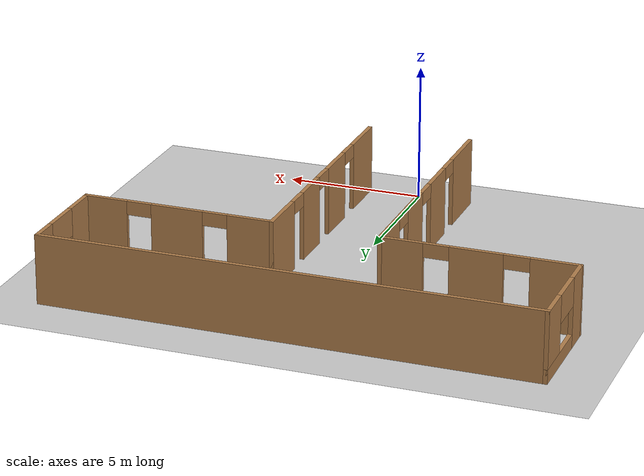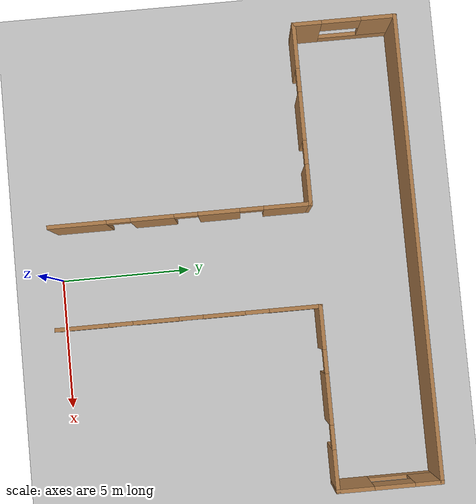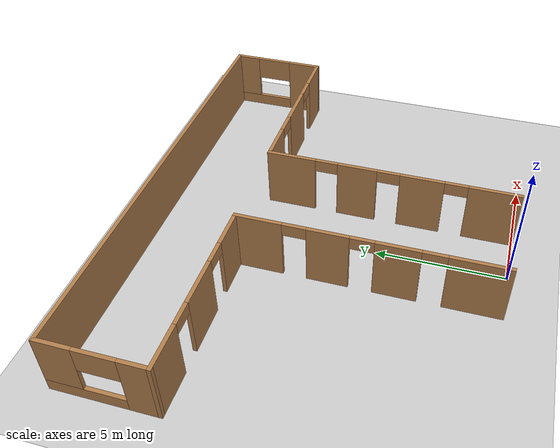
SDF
<sdf version="1.7">
 <world name="default">
  <light name="sun" type="directional">
   <pose>0 0 10 0 -0 0</pose>
   <diffuse>0.8 0.8 0.8 1</diffuse>
   <specular>0.2 0.2 0.2 1</specular>
   <attenuation>
    <range>1000</range>
    <constant>0.9</constant>
    <linear>0.01</linear>
    <quadratic>0.001</quadratic>
   </attenuation>
   <direction>-0.5 0.1 -0.9</direction>
   <spot><inner_angle>0</inner_angle><outer_angle>0</outer_angle><falloff>0</falloff></spot>
  </light>
  <model name="ground_plane">
   <static>1</static>
   <link name="link">
    <collision name="collision">
     <geometry><plane><normal>0 0 1</normal><size>100 100</size></plane></geometry>
     <surface>
      <contact><collide_bitmask>65535</collide_bitmask></contact>
      <friction><ode><mu>100</mu><mu2>50</mu2></ode></friction>
     </surface>
    </collision>
    <visual name="visual">
     <cast_shadows>0</cast_shadows>
     <geometry><plane><normal>0 0 1</normal><size>100 100</size></plane></geometry>
     <material>
      <script><uri>file://media/materials/scripts/gazebo.material</uri><name>Gazebo/Grey</name></script>
     </material>
    </visual>
   </link>
  </model>
  <gravity>0 0 -9.8</gravity>
  <magnetic_field>6e-06 2.3e-05 -4.2e-05</magnetic_field>
  <atmosphere type="adiabatic"/>
  <physics type="ode">
   <max_step_size>0.001</max_step_size>
   <real_time_factor>1</real_time_factor>
   <real_time_update_rate>1000</real_time_update_rate>
  </physics>
  <scene><ambient>0.4 0.4 0.4 1</ambient><background>0.7 0.7 0.7 1</background><shadows>1</shadows></scene>
  <spherical_coordinates>
   <surface_model>EARTH_WGS84</surface_model>
   <latitude_deg>0</latitude_deg>
   <longitude_deg>0</longitude_deg>
   <elevation>0</elevation>
   <heading_deg>0</heading_deg>
  </spherical_coordinates>
  <model name="Untitled">
   <pose>0.005 6.89 0 0 -0 0</pose>
   <link name="Wall_10">
    <pose>8.775 4.925 0 0 -0 1.5708</pose>
    <visual name="Wall_10_Visual_0">
     <pose>-1.28869 0 1.25 0 -0 0</pose>
     <geometry><box><size>1.42262 0.15 2.5</size></box></geometry>
     <material>
      <script><uri>file://media/materials/scripts/gazebo.material</uri><name>Gazebo/Wood</name></script>
      <ambient>1 1 1 1</ambient>
     </material>
     <meta><layer>0</layer></meta>
    </visual>
    <collision name="Wall_10_Collision_0">
     <geometry><box><size>1.42262 0.15 2.5</size></box></geometry>
     <pose>-1.28869 0 1.25 0 -0 0</pose>
    </collision>
    <visual name="Wall_10_Visual_1">
     <pose>0.711309 0 0.25 0 -0 0</pose>
     <geometry><box><size>2.57738 0.15 0.5</size></box></geometry>
     <material>
      <script><uri>file://media/materials/scripts/gazebo.material</uri><name>Gazebo/Wood</name></script>
      <ambient>1 1 1 1</ambient>
     </material>
     <meta><layer>0</layer></meta>
    </visual>
    <collision name="Wall_10_Collision_1">
     <geometry><box><size>2.57738 0.15 0.5</size></box></geometry>
     <pose>0.711309 0 0.25 0 -0 0</pose>
    </collision>
    <visual name="Wall_10_Visual_2">
     <pose>1.46131 0 1.5 0 -0 0</pose>
     <geometry><box><size>1.07738 0.15 2</size></box></geometry>
     <material>
      <script><uri>file://media/materials/scripts/gazebo.material</uri><name>Gazebo/Wood</name></script>
      <ambient>1 1 1 1</ambient>
     </material>
     <meta><layer>0</layer></meta>
    </visual>
    <collision name="Wall_10_Collision_2">
     <geometry><box><size>1.07738 0.15 2</size></box></geometry>
     <pose>1.46131 0 1.5 0 -0 0</pose>
    </collision>
    <visual name="Wall_10_Visual_3">
     <pose>0.172619 0 2 0 -0 0</pose>
     <geometry><box><size>1.5 0.15 1</size></box></geometry>
     <material>
      <script><uri>file://media/materials/scripts/gazebo.material</uri><name>Gazebo/Wood</name></script>
      <ambient>1 1 1 1</ambient>
     </material>
     <meta><layer>0</layer></meta>
    </visual>
    <collision name="Wall_10_Collision_3">
     <geometry><box><size>1.5 0.15 1</size></box></geometry>
     <pose>0.172619 0 2 0 -0 0</pose>
    </collision>
   </link>
   <link name="Wall_13">
    <pose>-8.775 4.925 0 0 -0 1.5708</pose>
    <visual name="Wall_13_Visual_0">
     <pose>-1.4302 0 1.25 0 -0 0</pose>
     <geometry><box><size>1.13959 0.15 2.5</size></box></geometry>
     <material>
      <script><uri>file://media/materials/scripts/gazebo.material</uri><name>Gazebo/Wood</name></script>
      <ambient>1 1 1 1</ambient>
     </material>
     <meta><layer>0</layer></meta>
    </visual>
    <collision name="Wall_13_Collision_0">
     <geometry><box><size>1.13959 0.15 2.5</size></box></geometry>
     <pose>-1.4302 0 1.25 0 -0 0</pose>
    </collision>
    <visual name="Wall_13_Visual_1">
     <pose>0.569795 0 0.25 0 -0 0</pose>
     <geometry><box><size>2.86041 0.15 0.5</size></box></geometry>
     <material>
      <script><uri>file://media/materials/scripts/gazebo.material</uri><name>Gazebo/Wood</name></script>
      <ambient>1 1 1 1</ambient>
     </material>
     <meta><layer>0</layer></meta>
    </visual>
    <collision name="Wall_13_Collision_1">
     <geometry><box><size>2.86041 0.15 0.5</size></box></geometry>
     <pose>0.569795 0 0.25 0 -0 0</pose>
    </collision>
    <visual name="Wall_13_Visual_2">
     <pose>1.3198 0 1.5 0 -0 0</pose>
     <geometry><box><size>1.36041 0.15 2</size></box></geometry>
     <material>
      <script><uri>file://media/materials/scripts/gazebo.material</uri><name>Gazebo/Wood</name></script>
      <ambient>1 1 1 1</ambient>
     </material>
     <meta><layer>0</layer></meta>
    </visual>
    <collision name="Wall_13_Collision_2">
     <geometry><box><size>1.36041 0.15 2</size></box></geometry>
     <pose>1.3198 0 1.5 0 -0 0</pose>
    </collision>
    <visual name="Wall_13_Visual_3">
     <pose>-0.11041 0 2 0 -0 0</pose>
     <geometry><box><size>1.5 0.15 1</size></box></geometry>
     <material>
      <script><uri>file://media/materials/scripts/gazebo.material</uri><name>Gazebo/Wood</name></script>
      <ambient>1 1 1 1</ambient>
     </material>
     <meta><layer>0</layer></meta>
    </visual>
    <collision name="Wall_13_Collision_3">
     <geometry><box><size>1.5 0.15 1</size></box></geometry>
     <pose>-0.11041 0 2 0 -0 0</pose>
    </collision>
   </link>
   <link name="Wall_15">
    <collision name="Wall_15_Collision">
     <geometry><box><size>17.7 0.15 2.5</size></box></geometry>
     <pose>0 0 1.25 0 -0 0</pose>
    </collision>
    <visual name="Wall_15_Visual">
     <pose>0 0 1.25 0 -0 0</pose>
     <geometry><box><size>17.7 0.15 2.5</size></box></geometry>
     <material>
      <script><uri>file://media/materials/scripts/gazebo.material</uri><name>Gazebo/Wood</name></script>
      <ambient>1 1 1 1</ambient>
     </material>
     <meta><layer>0</layer></meta>
    </visual>
    <pose>-0 6.85 0 0 -0 0</pose>
   </link>
   <link name="Wall_2">
    <pose>1.925 -1.925 0 0 -0 1.5708</pose>
    <visual name="Wall_2_Visual_0">
     <pose>-3.98979 0 1.25 0 -0 0</pose>
     <geometry><box><size>2.02042 0.15 2.5</size></box></geometry>
     <material>
      <script><uri>file://media/materials/scripts/gazebo.material</uri><name>Gazebo/Wood</name></script>
      <ambient>1 1 1 1</ambient>
     </material>
     <meta><layer>0</layer></meta>
    </visual>
    <collision name="Wall_2_Collision_0">
     <geometry><box><size>2.02042 0.15 2.5</size></box></geometry>
     <pose>-3.98979 0 1.25 0 -0 0</pose>
    </collision>
    <visual name="Wall_2_Visual_1">
     <pose>-1.22058 0 1.25 0 -0 0</pose>
     <geometry><box><size>1.71801 0.15 2.5</size></box></geometry>
     <material>
      <script><uri>file://media/materials/scripts/gazebo.material</uri><name>Gazebo/Wood</name></script>
      <ambient>1 1 1 1</ambient>
     </material>
     <meta><layer>0</layer></meta>
    </visual>
    <collision name="Wall_2_Collision_1">
     <geometry><box><size>1.71801 0.15 2.5</size></box></geometry>
     <pose>-1.22058 0 1.25 0 -0 0</pose>
    </collision>
    <visual name="Wall_2_Visual_2">
     <pose>1.32668 0 1.25 0 -0 0</pose>
     <geometry><box><size>1.5765 0.15 2.5</size></box></geometry>
     <material>
      <script><uri>file://media/materials/scripts/gazebo.material</uri><name>Gazebo/Wood</name></script>
      <ambient>1 1 1 1</ambient>
     </material>
     <meta><layer>0</layer></meta>
    </visual>
    <collision name="Wall_2_Collision_2">
     <geometry><box><size>1.5765 0.15 2.5</size></box></geometry>
     <pose>1.32668 0 1.25 0 -0 0</pose>
    </collision>
    <visual name="Wall_2_Visual_3">
     <pose>4.00746 0 1.25 0 -0 0</pose>
     <geometry><box><size>1.98508 0.15 2.5</size></box></geometry>
     <material>
      <script><uri>file://media/materials/scripts/gazebo.material</uri><name>Gazebo/Wood</name></script>
      <ambient>1 1 1 1</ambient>
     </material>
     <meta><layer>0</layer></meta>
    </visual>
    <collision name="Wall_2_Collision_3">
     <geometry><box><size>1.98508 0.15 2.5</size></box></geometry>
     <pose>4.00746 0 1.25 0 -0 0</pose>
    </collision>
    <visual name="Wall_2_Visual_4">
     <pose>-2.52958 0 2.25 0 -0 0</pose>
     <geometry><box><size>0.9 0.15 0.5</size></box></geometry>
     <material>
      <script><uri>file://media/materials/scripts/gazebo.material</uri><name>Gazebo/Wood</name></script>
      <ambient>1 1 1 1</ambient>
     </material>
     <meta><layer>0</layer></meta>
    </visual>
    <collision name="Wall_2_Collision_4">
     <geometry><box><size>0.9 0.15 0.5</size></box></geometry>
     <pose>-2.52958 0 2.25 0 -0 0</pose>
    </collision>
    <visual name="Wall_2_Visual_5">
     <pose>0.088427 0 2.25 0 -0 0</pose>
     <geometry><box><size>0.9 0.15 0.5</size></box></geometry>
     <material>
      <script><uri>file://media/materials/scripts/gazebo.material</uri><name>Gazebo/Wood</name></script>
      <ambient>1 1 1 1</ambient>
     </material>
     <meta><layer>0</layer></meta>
    </visual>
    <collision name="Wall_2_Collision_5">
     <geometry><box><size>0.9 0.15 0.5</size></box></geometry>
     <pose>0.088427 0 2.25 0 -0 0</pose>
    </collision>
    <visual name="Wall_2_Visual_6">
     <pose>2.56492 0 2.25 0 -0 0</pose>
     <geometry><box><size>0.9 0.15 0.5</size></box></geometry>
     <material>
      <script><uri>file://media/materials/scripts/gazebo.material</uri><name>Gazebo/Wood</name></script>
      <ambient>1 1 1 1</ambient>
     </material>
     <meta><layer>0</layer></meta>
    </visual>
    <collision name="Wall_2_Collision_6">
     <geometry><box><size>0.9 0.15 0.5</size></box></geometry>
     <pose>2.56492 0 2.25 0 -0 0</pose>
    </collision>
   </link>
   <link name="Wall_4">
    <pose>5.35 3 0 0 -0 0</pose>
    <visual name="Wall_4_Visual_0">
     <pose>-2.65499 0 1.25 0 -0 0</pose>
     <geometry><box><size>1.69003 0.15 2.5</size></box></geometry>
     <material>
      <script><uri>file://media/materials/scripts/gazebo.material</uri><name>Gazebo/Wood</name></script>
      <ambient>1 1 1 1</ambient>
     </material>
     <meta><layer>0</layer></meta>
    </visual>
    <collision name="Wall_4_Collision_0">
     <geometry><box><size>1.69003 0.15 2.5</size></box></geometry>
     <pose>-2.65499 0 1.25 0 -0 0</pose>
    </collision>
    <visual name="Wall_4_Visual_1">
     <pose>0.038992 0 1.25 0 -0 0</pose>
     <geometry><box><size>1.89793 0.15 2.5</size></box></geometry>
     <material>
      <script><uri>file://media/materials/scripts/gazebo.material</uri><name>Gazebo/Wood</name></script>
      <ambient>1 1 1 1</ambient>
     </material>
     <meta><layer>0</layer></meta>
    </visual>
    <collision name="Wall_4_Collision_1">
     <geometry><box><size>1.89793 0.15 2.5</size></box></geometry>
     <pose>0.038992 0 1.25 0 -0 0</pose>
    </collision>
    <visual name="Wall_4_Visual_2">
     <pose>2.69398 0 1.25 0 -0 0</pose>
     <geometry><box><size>1.61204 0.15 2.5</size></box></geometry>
     <material>
      <script><uri>file://media/materials/scripts/gazebo.material</uri><name>Gazebo/Wood</name></script>
      <ambient>1 1 1 1</ambient>
     </material>
     <meta><layer>0</layer></meta>
    </visual>
    <collision name="Wall_4_Collision_2">
     <geometry><box><size>1.61204 0.15 2.5</size></box></geometry>
     <pose>2.69398 0 1.25 0 -0 0</pose>
    </collision>
    <visual name="Wall_4_Visual_3">
     <pose>-1.35997 0 2.25 0 -0 0</pose>
     <geometry><box><size>0.9 0.15 0.5</size></box></geometry>
     <material>
      <script><uri>file://media/materials/scripts/gazebo.material</uri><name>Gazebo/Wood</name></script>
      <ambient>1 1 1 1</ambient>
     </material>
     <meta><layer>0</layer></meta>
    </visual>
    <collision name="Wall_4_Collision_3">
     <geometry><box><size>0.9 0.15 0.5</size></box></geometry>
     <pose>-1.35997 0 2.25 0 -0 0</pose>
    </collision>
    <visual name="Wall_4_Visual_4">
     <pose>1.43796 0 2.25 0 -0 0</pose>
     <geometry><box><size>0.9 0.15 0.5</size></box></geometry>
     <material>
      <script><uri>file://media/materials/scripts/gazebo.material</uri><name>Gazebo/Wood</name></script>
      <ambient>1 1 1 1</ambient>
     </material>
     <meta><layer>0</layer></meta>
    </visual>
    <collision name="Wall_4_Collision_4">
     <geometry><box><size>0.9 0.15 0.5</size></box></geometry>
     <pose>1.43796 0 2.25 0 -0 0</pose>
    </collision>
   </link>
   <link name="Wall_6">
    <pose>-1.925 -1.925 0 0 -0 1.5708</pose>
    <visual name="Wall_6_Visual_0">
     <pose>-3.88366 0 1.25 0 -0 0</pose>
     <geometry><box><size>2.23269 0.15 2.5</size></box></geometry>
     <material>
      <script><uri>file://media/materials/scripts/gazebo.material</uri><name>Gazebo/Wood</name></script>
      <ambient>1 1 1 1</ambient>
     </material>
     <meta><layer>0</layer></meta>
    </visual>
    <collision name="Wall_6_Collision_0">
     <geometry><box><size>2.23269 0.15 2.5</size></box></geometry>
     <pose>-3.88366 0 1.25 0 -0 0</pose>
    </collision>
    <visual name="Wall_6_Visual_1">
     <pose>-1.04369 0 1.25 0 -0 0</pose>
     <geometry><box><size>1.64725 0.15 2.5</size></box></geometry>
     <material>
      <script><uri>file://media/materials/scripts/gazebo.material</uri><name>Gazebo/Wood</name></script>
      <ambient>1 1 1 1</ambient>
     </material>
     <meta><layer>0</layer></meta>
    </visual>
    <collision name="Wall_6_Collision_1">
     <geometry><box><size>1.64725 0.15 2.5</size></box></geometry>
     <pose>-1.04369 0 1.25 0 -0 0</pose>
    </collision>
    <visual name="Wall_6_Visual_2">
     <pose>1.46819 0 1.25 0 -0 0</pose>
     <geometry><box><size>1.5765 0.15 2.5</size></box></geometry>
     <material>
      <script><uri>file://media/materials/scripts/gazebo.material</uri><name>Gazebo/Wood</name></script>
      <ambient>1 1 1 1</ambient>
     </material>
     <meta><layer>0</layer></meta>
    </visual>
    <collision name="Wall_6_Collision_2">
     <geometry><box><size>1.5765 0.15 2.5</size></box></geometry>
     <pose>1.46819 0 1.25 0 -0 0</pose>
    </collision>
    <visual name="Wall_6_Visual_3">
     <pose>4.07822 0 1.25 0 -0 0</pose>
     <geometry><box><size>1.84356 0.15 2.5</size></box></geometry>
     <material>
      <script><uri>file://media/materials/scripts/gazebo.material</uri><name>Gazebo/Wood</name></script>
      <ambient>1 1 1 1</ambient>
     </material>
     <meta><layer>0</layer></meta>
    </visual>
    <collision name="Wall_6_Collision_3">
     <geometry><box><size>1.84356 0.15 2.5</size></box></geometry>
     <pose>4.07822 0 1.25 0 -0 0</pose>
    </collision>
    <visual name="Wall_6_Visual_4">
     <pose>-2.31731 0 2.25 0 -0 0</pose>
     <geometry><box><size>0.9 0.15 0.5</size></box></geometry>
     <material>
      <script><uri>file://media/materials/scripts/gazebo.material</uri><name>Gazebo/Wood</name></script>
      <ambient>1 1 1 1</ambient>
     </material>
     <meta><layer>0</layer></meta>
    </visual>
    <collision name="Wall_6_Collision_4">
     <geometry><box><size>0.9 0.15 0.5</size></box></geometry>
     <pose>-2.31731 0 2.25 0 -0 0</pose>
    </collision>
    <visual name="Wall_6_Visual_5">
     <pose>0.229941 0 2.25 0 -0 0</pose>
     <geometry><box><size>0.9 0.15 0.5</size></box></geometry>
     <material>
      <script><uri>file://media/materials/scripts/gazebo.material</uri><name>Gazebo/Wood</name></script>
      <ambient>1 1 1 1</ambient>
     </material>
     <meta><layer>0</layer></meta>
    </visual>
    <collision name="Wall_6_Collision_5">
     <geometry><box><size>0.9 0.15 0.5</size></box></geometry>
     <pose>0.229941 0 2.25 0 -0 0</pose>
    </collision>
    <visual name="Wall_6_Visual_6">
     <pose>2.70644 0 2.25 0 -0 0</pose>
     <geometry><box><size>0.9 0.15 0.5</size></box></geometry>
     <material>
      <script><uri>file://media/materials/scripts/gazebo.material</uri><name>Gazebo/Wood</name></script>
      <ambient>1 1 1 1</ambient>
     </material>
     <meta><layer>0</layer></meta>
    </visual>
    <collision name="Wall_6_Collision_6">
     <geometry><box><size>0.9 0.15 0.5</size></box></geometry>
     <pose>2.70644 0 2.25 0 -0 0</pose>
    </collision>
   </link>
   <link name="Wall_8">
    <pose>-5.35 3 0 0 -0 3.14159</pose>
    <visual name="Wall_8_Visual_0">
     <pose>-2.70953 0 1.25 0 -0 0</pose>
     <geometry><box><size>1.58094 0.15 2.5</size></box></geometry>
     <material>
      <script><uri>file://media/materials/scripts/gazebo.material</uri><name>Gazebo/Wood</name></script>
      <ambient>1 1 1 1</ambient>
     </material>
     <meta><layer>0</layer></meta>
    </visual>
    <collision name="Wall_8_Collision_0">
     <geometry><box><size>1.58094 0.15 2.5</size></box></geometry>
     <pose>-2.70953 0 1.25 0 -0 0</pose>
    </collision>
    <visual name="Wall_8_Visual_1">
     <pose>-0.089302 0 1.25 0 -0 0</pose>
     <geometry><box><size>1.85953 0.15 2.5</size></box></geometry>
     <material>
      <script><uri>file://media/materials/scripts/gazebo.material</uri><name>Gazebo/Wood</name></script>
      <ambient>1 1 1 1</ambient>
     </material>
     <meta><layer>0</layer></meta>
    </visual>
    <collision name="Wall_8_Collision_1">
     <geometry><box><size>1.85953 0.15 2.5</size></box></geometry>
     <pose>-0.089302 0 1.25 0 -0 0</pose>
    </collision>
    <visual name="Wall_8_Visual_2">
     <pose>2.62023 0 1.25 0 -0 0</pose>
     <geometry><box><size>1.75954 0.15 2.5</size></box></geometry>
     <material>
      <script><uri>file://media/materials/scripts/gazebo.material</uri><name>Gazebo/Wood</name></script>
      <ambient>1 1 1 1</ambient>
     </material>
     <meta><layer>0</layer></meta>
    </visual>
    <collision name="Wall_8_Collision_2">
     <geometry><box><size>1.75954 0.15 2.5</size></box></geometry>
     <pose>2.62023 0 1.25 0 -0 0</pose>
    </collision>
    <visual name="Wall_8_Visual_3">
     <pose>-1.46906 0 2.25 0 -0 0</pose>
     <geometry><box><size>0.9 0.15 0.5</size></box></geometry>
     <material>
      <script><uri>file://media/materials/scripts/gazebo.material</uri><name>Gazebo/Wood</name></script>
      <ambient>1 1 1 1</ambient>
     </material>
     <meta><layer>0</layer></meta>
    </visual>
    <collision name="Wall_8_Collision_3">
     <geometry><box><size>0.9 0.15 0.5</size></box></geometry>
     <pose>-1.46906 0 2.25 0 -0 0</pose>
    </collision>
    <visual name="Wall_8_Visual_4">
     <pose>1.29046 0 2.25 0 -0 0</pose>
     <geometry><box><size>0.9 0.15 0.5</size></box></geometry>
     <material>
      <script><uri>file://media/materials/scripts/gazebo.material</uri><name>Gazebo/Wood</name></script>
      <ambient>1 1 1 1</ambient>
     </material>
     <meta><layer>0</layer></meta>
    </visual>
    <collision name="Wall_8_Collision_4">
     <geometry><box><size>0.9 0.15 0.5</size></box></geometry>
     <pose>1.29046 0 2.25 0 -0 0</pose>
    </collision>
   </link>
   <static>1</static>
  </model>
 </world>
</sdf>
